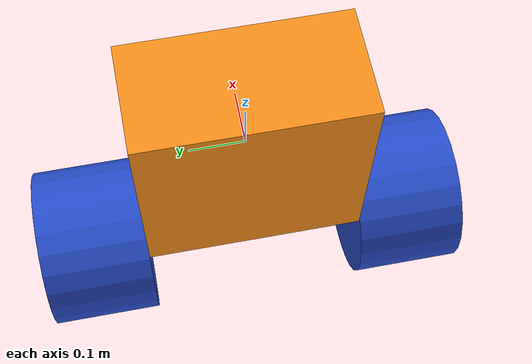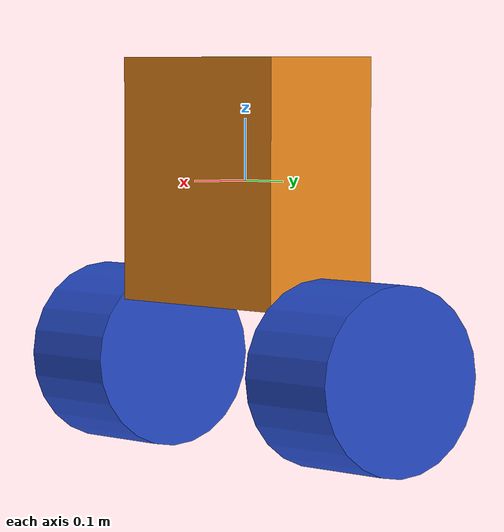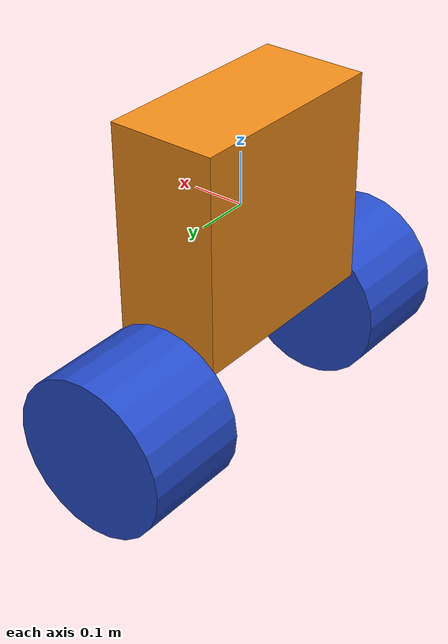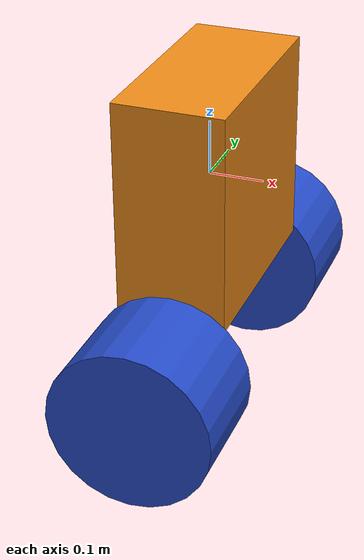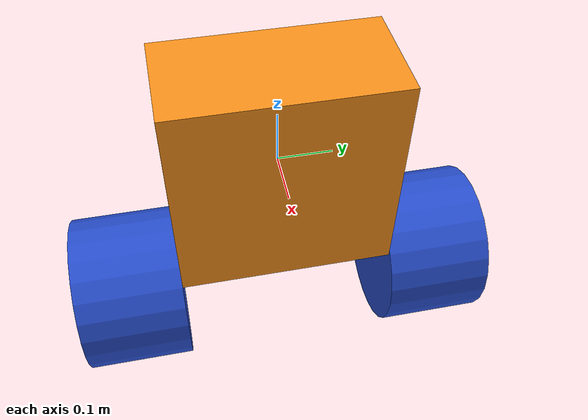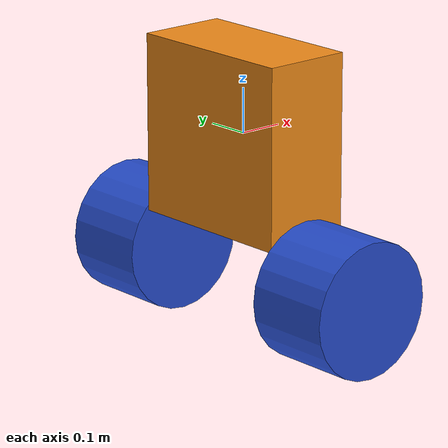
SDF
<?xml version="1.0" ?>

  <sdf version="1.5">
    <model name="usl_balancebot">

      <include>
        <uri>model://usl_balancebot_base</uri>
        <name>usl_balancebot_base</name>
        <pose>0 0 0.0 0 0 0</pose>
      </include>
      <include>
        <uri>model://usl_balancebot_wheel</uri>
        <name>usl_balancebot_wheel_0</name>
        <pose>0.0 -0.3 -0.3 1.5707963267948966 0 0</pose>
      </include>
      <include>
        <uri>model://usl_balancebot_wheel</uri>
        <name>usl_balancebot_wheel_1</name>
        <pose>-0.0 0.3 -0.3 1.5707963267948966  0 0</pose>
      </include>

      <joint name="usl_balancebot_wheel_0_joint" type="revolute">
        <parent>usl_balancebot_base::base</parent>
        <child>usl_balancebot_wheel_0::wheel </child>+
        <limit>
          <lower>-1e+16</lower>
          <upper>1e+16</upper>
        </limit>
        <axis>
          <xyz>0 1 0</xyz>
          <use_parent_model_frame>1</use_parent_model_frame>
        </axis>
      </joint>

      <plugin name="usl_balancebot_wheel_0_plugin" filename='librotors_gazebo_motor_model.so'>
        <robotNamespace></robotNamespace>
        <jointName>usl_balancebot_wheel_0_joint </jointName>
        <linkName>usl_balancebot_wheel_0::wheel</linkName>
        <turningDirection>ccw</turningDirection>
        <timeConstantUp>1.0e-05</timeConstantUp>
        <timeConstantDown>1.0e-05</timeConstantDown>
        <maxRotVelocity>1000</maxRotVelocity>
        <motorConstant>8.599e-20</motorConstant>
        <momentConstant>8.599e-20</momentConstant>
        <commandSubTopic>/gazebo/command/wheel_speed</commandSubTopic>
        <motorNumber>0</motorNumber>
        <rotorDragCoefficient>0.000000018</rotorDragCoefficient>
        <rollingMomentCoefficient>1e-06</rollingMomentCoefficient>
        <motorSpeedPubTopic>wheel_speed/0</motorSpeedPubTopic>
        <rotorVelocitySlowdownSim>10</rotorVelocitySlowdownSim>
      </plugin>

      <joint name="usl_balancebot_wheel_1_joint" type="revolute">
        <parent>usl_balancebot_base::base</parent>
        <child>usl_balancebot_wheel_1::wheel </child>+
        <limit>
          <lower>-1e+16</lower>
          <upper>1e+16</upper>
        </limit>
        <axis>
          <xyz>0 1 0</xyz>
          <use_parent_model_frame>1</use_parent_model_frame>
        </axis>
      </joint>

      <plugin name="usl_balancebot_wheel_1_plugin" filename='librotors_gazebo_motor_model.so'>
        <robotNamespace></robotNamespace>
        <jointName>usl_balancebot_wheel_1_joint </jointName>
        <linkName>usl_balancebot_wheel_1::wheel</linkName>
        <turningDirection>ccw</turningDirection>
        <timeConstantUp>1.0e-05</timeConstantUp>
        <timeConstantDown>1.0e-05</timeConstantDown>
        <maxRotVelocity>1000</maxRotVelocity>
        <motorConstant>8.599e-20</motorConstant>
        <momentConstant>8.599e-20</momentConstant>
        <commandSubTopic>/gazebo/command/wheel_speed</commandSubTopic>
        <motorNumber>1</motorNumber>
        <rotorDragCoefficient>0.000000018</rotorDragCoefficient>
        <rollingMomentCoefficient>1e-06</rollingMomentCoefficient>
        <motorSpeedPubTopic>wheel_speed/1</motorSpeedPubTopic>
        <rotorVelocitySlowdownSim>10</rotorVelocitySlowdownSim>
      </plugin>

    <plugin name="MyBalancebotPlugin" filename="libMyBalancebotPlugin.so">
      <modelXYZToAirplaneXForwardZDown>0 0 0 3.141593 0 0</modelXYZToAirplaneXForwardZDown>
      <gazeboXYZToNED>0 0 0 3.141593 0 0</gazeboXYZToNED>
      <motor_num>2</motor_num>
      <wheel_1_name>usl_balancebot_wheel_0::wheel</wheel_1_name>
      <wheel_2_name>usl_balancebot_wheel_1::wheel</wheel_2_name>
      <motor_pub>/gazebo/command/wheel_speed</motor_pub>
      <imuName>usl_balancebot_base::imu_link::imu_sensor</imuName>
      <connectionTimeoutMaxCount>5</connectionTimeoutMaxCount>
    </plugin>
  </model>

</sdf>

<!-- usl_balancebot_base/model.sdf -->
<sdf version="1.5">
    <model name="usl_balancebot_base">

      <link name="base">
      <pose>0 0 0.0  0 0 0</pose>
      <inertial>
        <pose>0 0 0 0 0 0</pose>
        <mass>30.5</mass>
        <inertia>
          <ixx>0.8133333333333335</ixx>
          <iyy>0.5083333333333334</iyy>
          <izz>0.5083333333333334</izz>
          <ixy>0</ixy>
          <ixz>0</ixz>
          <iyz>0</iyz>
        </inertia>
      </inertial>
      <collision name="base_collision">
        <pose>0 0 0  0 0 0</pose>
        <geometry>
          <box>
            <size>0.2 0.4 0.4</size>
          </box>
        </geometry>
        <surface>
          <contact>
            <ode/>
          </contact>
          <friction>
            <ode/>
          </friction>
        </surface>
      </collision>
      <visual name="base_visual">
        <geometry>
          <box>
            <size>0.2 0.4 0.4</size>
          </box>
        </geometry>
        <material>
          <script>
            <name>Gazebo/Orange</name>
          </script>
        </material>
      </visual>
    </link>
    <link name='imu_link'>
    <inertial>
      <pose>0 0 0 0 0 0</pose>
      <mass>0.15</mass>
      <inertia>
        <ixx>0.00001</ixx>
        <ixy>0</ixy>
        <ixz>0</ixz>
        <iyy>0.00002</iyy>
        <iyz>0</iyz>
        <izz>0.00002</izz>
      </inertia>
    </inertial>
    <sensor name="imu_sensor" type="imu">
      <pose>0 0 0 3.141593 0 0</pose>
      <always_on>1</always_on>
      <update_rate>1000.0</update_rate>
      <topic>__default_topic__</topic>
    </sensor>
  </link>
  <joint name='imu_joint' type='revolute'>
    <child>imu_link</child>
    <parent>base</parent>
    <axis>
      <xyz>0 0 1</xyz>
      <limit>
        <lower>-0.0001</lower>
        <upper>0.00001</upper>
        <effort>0</effort>
        <velocity>0</velocity>
      </limit>
      <dynamics>
        <damping>1.0</damping>
      </dynamics>
      <use_parent_model_frame>1</use_parent_model_frame>
    </axis>
    <physics>
      <ode>
        <implicit_spring_damper>1</implicit_spring_damper>
      </ode>
    </physics>
  </joint>

</model>
</sdf>

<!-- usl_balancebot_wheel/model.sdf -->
<sdf version="1.5">
    <model name="usl_balancebot_wheel">
      <link name='wheel'>
      <pose>0.0 -0.0 0.0 0 -0 0</pose>
      <inertial>
        <pose>0 0 0 0 -0 0</pose>
        <mass>15.3</mass>
        <inertia>
          <ixx>0.1370625</ixx>
          <ixy>0</ixy>
          <ixz>0</ixz>
          <iyy>0.1370625</iyy>
          <iyz>0</iyz>
          <izz>0.172125</izz>
        </inertia>
      </inertial>
      <collision name='rotor_collision'>
        <pose>0 0 0 0 -0 0</pose>
        <geometry>
          <cylinder>
            <length>0.2</length>
            <radius>0.15</radius>
          </cylinder>
        </geometry>
        <max_contacts>1</max_contacts>
        <surface>
          <friction>
            <torsional>
              <coefficient>0.25</coefficient>
              <use_patch_radius>1</use_patch_radius>
              <surface_radius>0.0686</surface_radius>
            </torsional>
            <ode>
              <mu>0.5</mu>
              <mu2>0.5</mu2>
              <fdir1>1 0 0</fdir1>
              <slip1>0.0</slip1>
              <slip2>0.0</slip2>
            </ode>
          </friction>
          <bounce>
            <restitution_coefficient>0</restitution_coefficient>
            <threshold>1e6</threshold>
          </bounce>
          <contact>
            <ode>
              <min_depth>0.001</min_depth>
              <kp>1e8</kp>
            </ode>
          </contact>
        </surface>
      </collision>
      <visual name='wheel_visual'>
        <pose>0 0 0 0 -0 0</pose>
        <geometry>
          <cylinder>
            <length>0.2</length>
            <radius>0.15</radius>
          </cylinder>
        </geometry>
        <material>
          <script>
            <name>Gazebo/Blue</name>
            <uri>__default__</uri>
          </script>
        </material>
      </visual>
      <gravity>1</gravity>
      <velocity_decay />
      <self_collide>0</self_collide>
    </link>
  </model>
</sdf>
